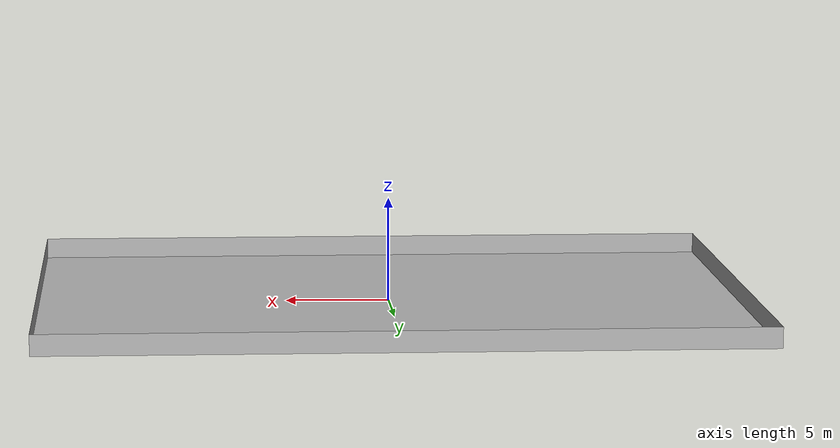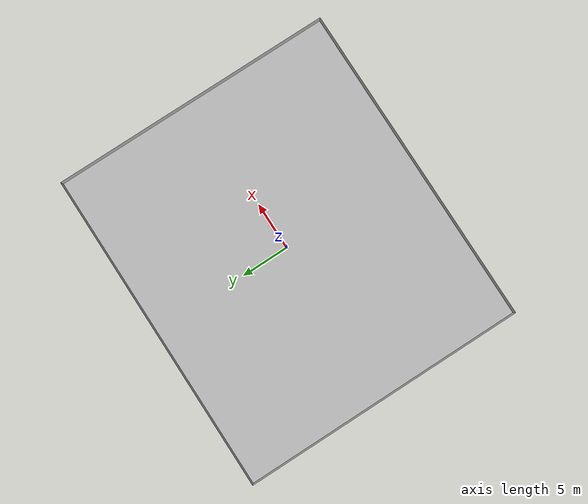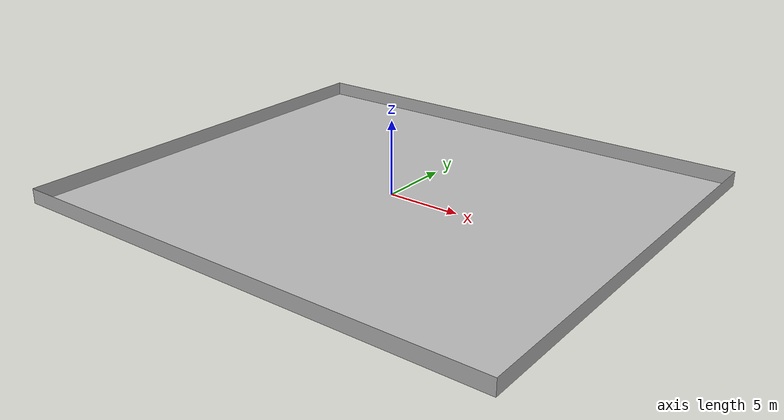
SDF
<?xml version='1.0' encoding='utf-8'?>
<sdf version="1.7">
<model name="template_model">
<link name="track">
<collision name="collision">
<pose>0 0 0 0 0 0</pose>
<geometry>
<mesh>
<uri>model://meshes/hamption_open/hamption_open_collision.dae</uri>
</mesh>
</geometry>
</collision>
<visual name="visual">
<pose>0 0 0 0 0 0</pose>
<geometry>
<mesh>
<uri>model://meshes/hamption_open/hamption_open.dae</uri>
</mesh>
</geometry>
</visual>
</link>
<static>1</static>
</model>
</sdf>
